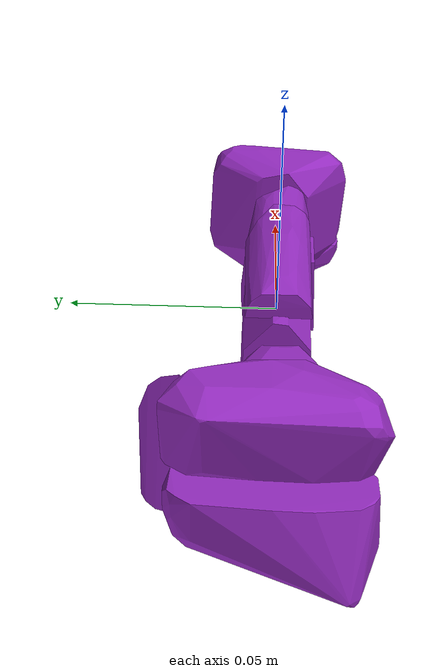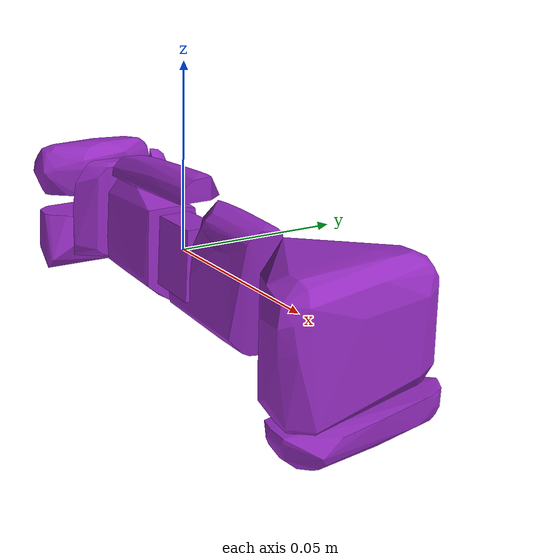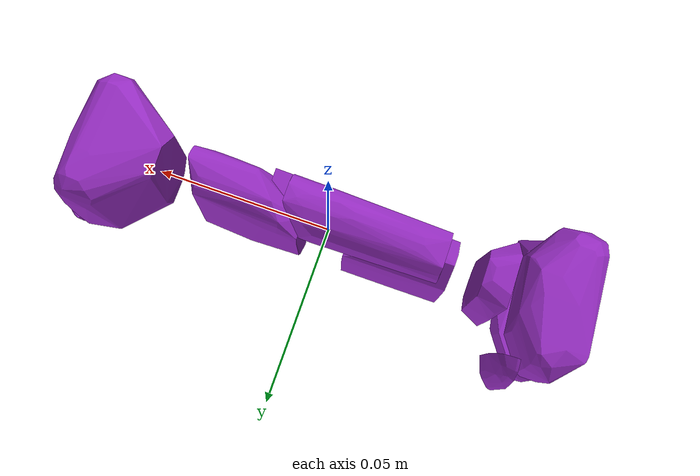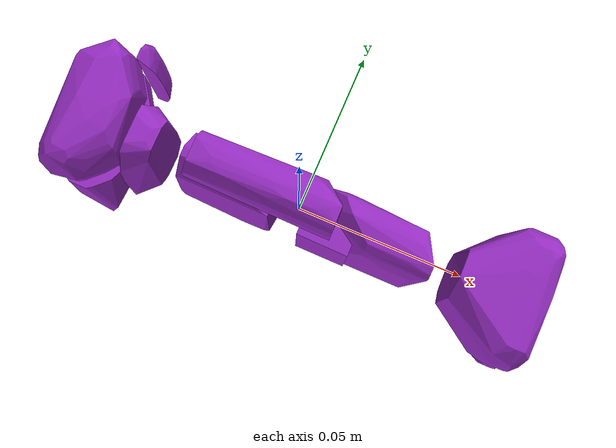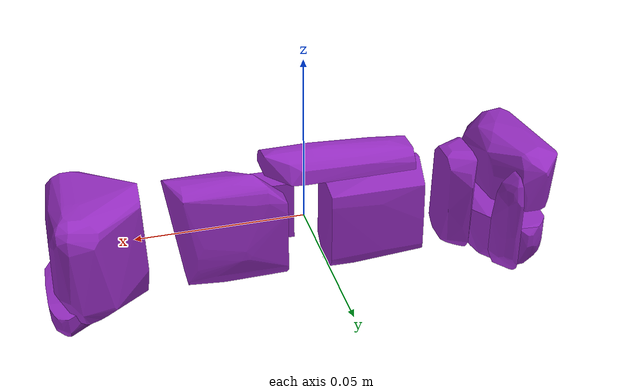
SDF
<?xml version='1.0' encoding='UTF-8'?>
<!-- This SDF was autogenerated by obj_to_drake_sdf.py -->
<sdf version="1.7">
  <model name="I_shape_texture">
    <link name="I_shape_texture">
      <inertial>
        <pose>0 0 0 0 0 0</pose>
        <mass>0.05</mass>
        <inertia>
          <ixx>1.4539806e-05</ixx>
          <iyy>0.00014059804</iyy>
          <izz>0.00013928297</izz>
          <ixy>1.3360774e-06</ixy>
          <ixz>-2.9194143e-08</ixz>
          <iyz>-9.4610369e-08</iyz>
        </inertia>
      </inertial>
      <visual name="convex_0">
        <pose>0 0 0 0 0 0</pose>
        <geometry>
          <mesh>
            <uri>I_shape_texture_convex_0.obj</uri>
          </mesh>
        </geometry>
        <material>
          <diffuse>0.5882352941176471 0.17254901960784313 0.7607843137254902 1</diffuse>
        </material>
      </visual>
      <collision name="convex_0_volume">
        <pose>0 0 0 0 0 0</pose>
        <geometry>
          <mesh>
            <uri>I_shape_texture_convex_0.obj</uri>
          </mesh>
        </geometry>
        <drake:proximity_properties xmlns:drake="uri:drake">
          <drake:compliant_hydroelastic/>
          <drake:hydroelastic_modulus> 3.0e7 </drake:hydroelastic_modulus>
          <drake:mesh_resolution_hint> 0.02 </drake:mesh_resolution_hint>
          <drake:hunt_crossley_dissipation>10</drake:hunt_crossley_dissipation>
          <drake:mu_dynamic>0.3</drake:mu_dynamic>
        </drake:proximity_properties>
      </collision>
      <visual name="convex_1">
        <pose>0 0 0 0 0 0</pose>
        <geometry>
          <mesh>
            <uri>I_shape_texture_convex_1.obj</uri>
          </mesh>
        </geometry>
        <material>
          <diffuse>0.5882352941176471 0.17254901960784313 0.7607843137254902 1</diffuse>
        </material>
      </visual>
      <collision name="convex_1_volume">
        <pose>0 0 0 0 0 0</pose>
        <geometry>
          <mesh>
            <uri>I_shape_texture_convex_1.obj</uri>
          </mesh>
        </geometry>
        <drake:proximity_properties xmlns:drake="uri:drake">
          <drake:compliant_hydroelastic/>
          <drake:hydroelastic_modulus> 3.0e7 </drake:hydroelastic_modulus>
          <drake:mesh_resolution_hint> 0.02 </drake:mesh_resolution_hint>
          <drake:hunt_crossley_dissipation>10</drake:hunt_crossley_dissipation>
          <drake:mu_dynamic>0.3</drake:mu_dynamic>
        </drake:proximity_properties>
      </collision>
      <visual name="convex_2">
        <pose>0 0 0 0 0 0</pose>
        <geometry>
          <mesh>
            <uri>I_shape_texture_convex_2.obj</uri>
          </mesh>
        </geometry>
        <material>
          <diffuse>0.5882352941176471 0.17254901960784313 0.7607843137254902 1</diffuse>
        </material>
      </visual>
      <collision name="convex_2_volume">
        <pose>0 0 0 0 0 0</pose>
        <geometry>
          <mesh>
            <uri>I_shape_texture_convex_2.obj</uri>
          </mesh>
        </geometry>
        <drake:proximity_properties xmlns:drake="uri:drake">
          <drake:compliant_hydroelastic/>
          <drake:hydroelastic_modulus> 3.0e7 </drake:hydroelastic_modulus>
          <drake:mesh_resolution_hint> 0.02 </drake:mesh_resolution_hint>
          <drake:hunt_crossley_dissipation>10</drake:hunt_crossley_dissipation>
          <drake:mu_dynamic>0.3</drake:mu_dynamic>
        </drake:proximity_properties>
      </collision>
      <visual name="convex_3">
        <pose>0 0 0 0 0 0</pose>
        <geometry>
          <mesh>
            <uri>I_shape_texture_convex_3.obj</uri>
          </mesh>
        </geometry>
        <material>
          <diffuse>0.5882352941176471 0.17254901960784313 0.7607843137254902 1</diffuse>
        </material>
      </visual>
      <collision name="convex_3_volume">
        <pose>0 0 0 0 0 0</pose>
        <geometry>
          <mesh>
            <uri>I_shape_texture_convex_3.obj</uri>
          </mesh>
        </geometry>
        <drake:proximity_properties xmlns:drake="uri:drake">
          <drake:compliant_hydroelastic/>
          <drake:hydroelastic_modulus> 3.0e7 </drake:hydroelastic_modulus>
          <drake:mesh_resolution_hint> 0.02 </drake:mesh_resolution_hint>
          <drake:hunt_crossley_dissipation>10</drake:hunt_crossley_dissipation>
          <drake:mu_dynamic>0.3</drake:mu_dynamic>
        </drake:proximity_properties>
      </collision>
      <visual name="convex_4">
        <pose>0 0 0 0 0 0</pose>
        <geometry>
          <mesh>
            <uri>I_shape_texture_convex_4.obj</uri>
          </mesh>
        </geometry>
        <material>
          <diffuse>0.5882352941176471 0.17254901960784313 0.7607843137254902 1</diffuse>
        </material>
      </visual>
      <collision name="convex_4_volume">
        <pose>0 0 0 0 0 0</pose>
        <geometry>
          <mesh>
            <uri>I_shape_texture_convex_4.obj</uri>
          </mesh>
        </geometry>
        <drake:proximity_properties xmlns:drake="uri:drake">
          <drake:compliant_hydroelastic/>
          <drake:hydroelastic_modulus> 3.0e7 </drake:hydroelastic_modulus>
          <drake:mesh_resolution_hint> 0.02 </drake:mesh_resolution_hint>
          <drake:hunt_crossley_dissipation>10</drake:hunt_crossley_dissipation>
          <drake:mu_dynamic>0.3</drake:mu_dynamic>
        </drake:proximity_properties>
      </collision>
      <visual name="convex_5">
        <pose>0 0 0 0 0 0</pose>
        <geometry>
          <mesh>
            <uri>I_shape_texture_convex_5.obj</uri>
          </mesh>
        </geometry>
        <material>
          <diffuse>0.5882352941176471 0.17254901960784313 0.7607843137254902 1</diffuse>
        </material>
      </visual>
      <collision name="convex_5_volume">
        <pose>0 0 0 0 0 0</pose>
        <geometry>
          <mesh>
            <uri>I_shape_texture_convex_5.obj</uri>
          </mesh>
        </geometry>
        <drake:proximity_properties xmlns:drake="uri:drake">
          <drake:compliant_hydroelastic/>
          <drake:hydroelastic_modulus> 3.0e7 </drake:hydroelastic_modulus>
          <drake:mesh_resolution_hint> 0.02 </drake:mesh_resolution_hint>
          <drake:hunt_crossley_dissipation>10</drake:hunt_crossley_dissipation>
          <drake:mu_dynamic>0.3</drake:mu_dynamic>
        </drake:proximity_properties>
      </collision>
      <visual name="convex_6">
        <pose>0 0 0 0 0 0</pose>
        <geometry>
          <mesh>
            <uri>I_shape_texture_convex_6.obj</uri>
          </mesh>
        </geometry>
        <material>
          <diffuse>0.5882352941176471 0.17254901960784313 0.7607843137254902 1</diffuse>
        </material>
      </visual>
      <collision name="convex_6_volume">
        <pose>0 0 0 0 0 0</pose>
        <geometry>
          <mesh>
            <uri>I_shape_texture_convex_6.obj</uri>
          </mesh>
        </geometry>
        <drake:proximity_properties xmlns:drake="uri:drake">
          <drake:compliant_hydroelastic/>
          <drake:hydroelastic_modulus> 3.0e7 </drake:hydroelastic_modulus>
          <drake:mesh_resolution_hint> 0.02 </drake:mesh_resolution_hint>
          <drake:hunt_crossley_dissipation>10</drake:hunt_crossley_dissipation>
          <drake:mu_dynamic>0.3</drake:mu_dynamic>
        </drake:proximity_properties>
      </collision>
      <visual name="convex_7">
        <pose>0 0 0 0 0 0</pose>
        <geometry>
          <mesh>
            <uri>I_shape_texture_convex_7.obj</uri>
          </mesh>
        </geometry>
        <material>
          <diffuse>0.5882352941176471 0.17254901960784313 0.7607843137254902 1</diffuse>
        </material>
      </visual>
      <collision name="convex_7_volume">
        <pose>0 0 0 0 0 0</pose>
        <geometry>
          <mesh>
            <uri>I_shape_texture_convex_7.obj</uri>
          </mesh>
        </geometry>
        <drake:proximity_properties xmlns:drake="uri:drake">
          <drake:compliant_hydroelastic/>
          <drake:hydroelastic_modulus> 3.0e7 </drake:hydroelastic_modulus>
          <drake:mesh_resolution_hint> 0.02 </drake:mesh_resolution_hint>
          <drake:hunt_crossley_dissipation>10</drake:hunt_crossley_dissipation>
          <drake:mu_dynamic>0.3</drake:mu_dynamic>
        </drake:proximity_properties>
      </collision>
      <visual name="convex_8">
        <pose>0 0 0 0 0 0</pose>
        <geometry>
          <mesh>
            <uri>I_shape_texture_convex_8.obj</uri>
          </mesh>
        </geometry>
        <material>
          <diffuse>0.5882352941176471 0.17254901960784313 0.7607843137254902 1</diffuse>
        </material>
      </visual>
      <collision name="convex_8_volume">
        <pose>0 0 0 0 0 0</pose>
        <geometry>
          <mesh>
            <uri>I_shape_texture_convex_8.obj</uri>
          </mesh>
        </geometry>
        <drake:proximity_properties xmlns:drake="uri:drake">
          <drake:compliant_hydroelastic/>
          <drake:hydroelastic_modulus> 3.0e7 </drake:hydroelastic_modulus>
          <drake:mesh_resolution_hint> 0.02 </drake:mesh_resolution_hint>
          <drake:hunt_crossley_dissipation>10</drake:hunt_crossley_dissipation>
          <drake:mu_dynamic>0.3</drake:mu_dynamic>
        </drake:proximity_properties>
      </collision>
      <visual name="convex_9">
        <pose>0 0 0 0 0 0</pose>
        <geometry>
          <mesh>
            <uri>I_shape_texture_convex_9.obj</uri>
          </mesh>
        </geometry>
        <material>
          <diffuse>0.5882352941176471 0.17254901960784313 0.7607843137254902 1</diffuse>
        </material>
      </visual>
      <collision name="convex_9_volume">
        <pose>0 0 0 0 0 0</pose>
        <geometry>
          <mesh>
            <uri>I_shape_texture_convex_9.obj</uri>
          </mesh>
        </geometry>
        <drake:proximity_properties xmlns:drake="uri:drake">
          <drake:compliant_hydroelastic/>
          <drake:hydroelastic_modulus> 3.0e7 </drake:hydroelastic_modulus>
          <drake:mesh_resolution_hint> 0.02 </drake:mesh_resolution_hint>
          <drake:hunt_crossley_dissipation>10</drake:hunt_crossley_dissipation>
          <drake:mu_dynamic>0.3</drake:mu_dynamic>
        </drake:proximity_properties>
      </collision>
    </link>
  </model>
</sdf>
